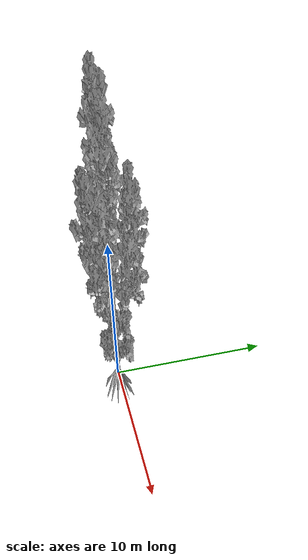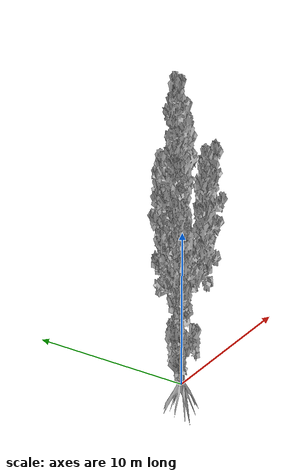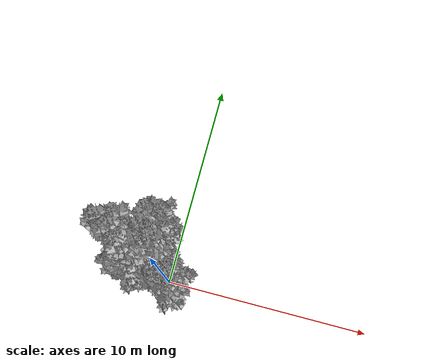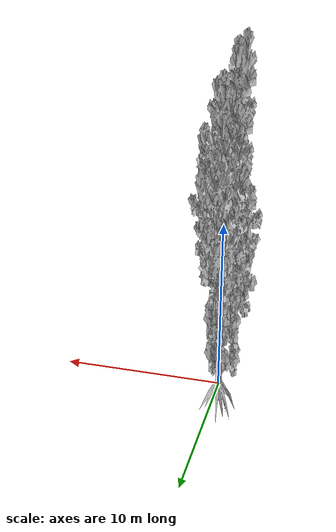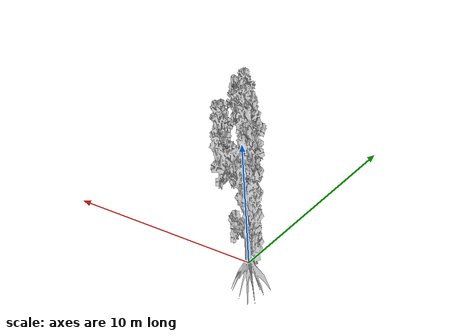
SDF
<?xml version="1.0" ?>
<sdf version="1.6">
  <model name="tree_pine5">
    <static>1</static>
    <link name="link">
      <collision name="collision">
        <geometry>
          <mesh>
            <uri>model://tree_pine5/meshes/OC59_5.obj</uri><scale>1 1 2</scale>
          </mesh>
        </geometry>
      </collision>
      <visual name="branch">
        <geometry>
          <mesh>
            <uri>model://tree_pine5/meshes/OC59_5.obj</uri><scale>1 1 2</scale>
          </mesh>
        </geometry>
        <cast_shadows>1</cast_shadows>
      </visual>
    </link>
  </model>
</sdf>
